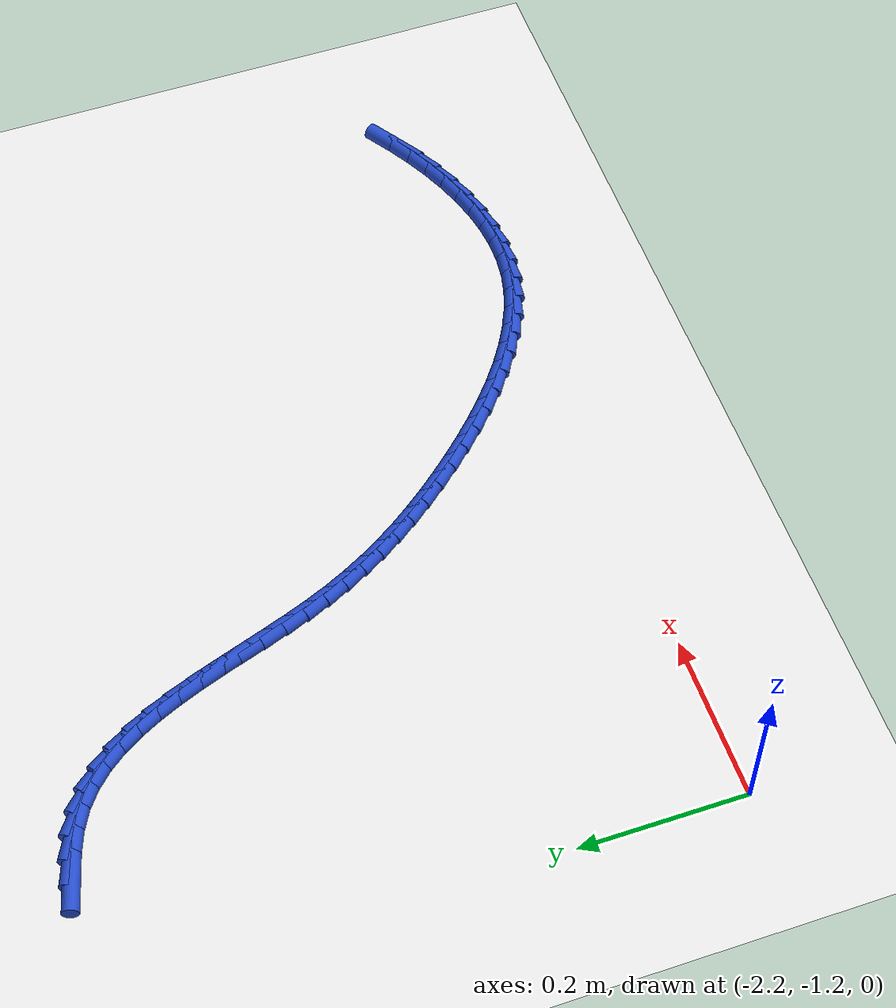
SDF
<sdf version="1.6">
 <world name="default">
  <model name="ground_plane">
   <static>1</static>
   <link name="link">
    <collision name="collision">
     <geometry><plane><normal>0 0 1</normal><size>100 100</size></plane></geometry>
     <surface><friction><ode><mu>100</mu><mu2>50</mu2></ode></friction></surface>
    </collision>
    <visual name="visual">
     <cast_shadows>0</cast_shadows>
     <geometry><plane><normal>0 0 1</normal><size>100 100</size></plane></geometry>
     <material>
      <script><uri>file://media/materials/scripts/gazebo.material</uri><name>Gazebo/WhiteGlow</name></script>
     </material>
    </visual>
   </link>
  </model>
  <model name="line">
   <link name="link_155">
    <pose>-2.062735660534346 -0.4829115184791522 0.01 0 1.57 -0.28682949683441206</pose>
    <collision name="collision">
     <geometry><cylinder><radius>0.01</radius><length>0.08</length></cylinder></geometry>
    </collision>
    <visual name="visual">
     <material>
      <script><name>Gazebo/Blue</name><uri>file://media/materials/scripts/gazebo.material</uri></script>
     </material>
     <geometry><cylinder><radius>0.01</radius><length>0.08</length></cylinder></geometry>
    </visual>
   </link>
   <link name="link_156">
    <pose>-2.0349934640824365 -0.49109444556538323 0.01 0 1.57 -0.37485598040513674</pose>
    <collision name="collision">
     <geometry><cylinder><radius>0.01</radius><length>0.08</length></cylinder></geometry>
    </collision>
    <visual name="visual">
     <material>
      <script><name>Gazebo/Blue</name><uri>file://media/materials/scripts/gazebo.material</uri></script>
     </material>
     <geometry><cylinder><radius>0.01</radius><length>0.08</length></cylinder></geometry>
    </visual>
   </link>
   <link name="link_157">
    <pose>-2.0089760882271146 -0.5013312488021626 0.01 0 1.57 -0.5024992568520704</pose>
    <collision name="collision">
     <geometry><cylinder><radius>0.01</radius><length>0.08</length></cylinder></geometry>
    </collision>
    <visual name="visual">
     <material>
      <script><name>Gazebo/Blue</name><uri>file://media/materials/scripts/gazebo.material</uri></script>
     </material>
     <geometry><cylinder><radius>0.01</radius><length>0.08</length></cylinder></geometry>
    </visual>
   </link>
   <link name="link_158">
    <pose>-1.9852979208535406 -0.5143436350402294 0.01 0 1.57 -0.655659338590333</pose>
    <collision name="collision">
     <geometry><cylinder><radius>0.01</radius><length>0.08</length></cylinder></geometry>
    </collision>
    <visual name="visual">
     <material>
      <script><name>Gazebo/Blue</name><uri>file://media/materials/scripts/gazebo.material</uri></script>
     </material>
     <geometry><cylinder><radius>0.01</radius><length>0.08</length></cylinder></geometry>
    </visual>
   </link>
   <link name="link_159">
    <pose>-1.9642812218247252 -0.5305091127178927 0.01 0 1.57 -0.7974680891804768</pose>
    <collision name="collision">
     <geometry><cylinder><radius>0.01</radius><length>0.08</length></cylinder></geometry>
    </collision>
    <visual name="visual">
     <material>
      <script><name>Gazebo/Blue</name><uri>file://media/materials/scripts/gazebo.material</uri></script>
     </material>
     <geometry><cylinder><radius>0.01</radius><length>0.08</length></cylinder></geometry>
    </visual>
   </link>
   <link name="link_160">
    <pose>-1.9456932666925997 -0.5495512827250142 0.01 0 1.57 -0.9191263827128971</pose>
    <collision name="collision">
     <geometry><cylinder><radius>0.01</radius><length>0.08</length></cylinder></geometry>
    </collision>
    <visual name="visual">
     <material>
      <script><name>Gazebo/Blue</name><uri>file://media/materials/scripts/gazebo.material</uri></script>
     </material>
     <geometry><cylinder><radius>0.01</radius><length>0.08</length></cylinder></geometry>
    </visual>
   </link>
   <link name="link_161">
    <pose>-1.9292392602196786 -0.5711206113475957 0.01 0 1.57 -1.0191003191852566</pose>
    <collision name="collision">
     <geometry><cylinder><radius>0.01</radius><length>0.08</length></cylinder></geometry>
    </collision>
    <visual name="visual">
     <material>
      <script><name>Gazebo/Blue</name><uri>file://media/materials/scripts/gazebo.material</uri></script>
     </material>
     <geometry><cylinder><radius>0.01</radius><length>0.08</length></cylinder></geometry>
    </visual>
   </link>
   <link name="link_162">
    <pose>-1.9146244071684757 -0.5948675648716398 0.01 0 1.57 -1.0983364284190318</pose>
    <collision name="collision">
     <geometry><cylinder><radius>0.01</radius><length>0.08</length></cylinder></geometry>
    </collision>
    <visual name="visual">
     <material>
      <script><name>Gazebo/Blue</name><uri>file://media/materials/scripts/gazebo.material</uri></script>
     </material>
     <geometry><cylinder><radius>0.01</radius><length>0.08</length></cylinder></geometry>
    </visual>
   </link>
   <link name="link_163">
    <pose>-1.9015539123015044 -0.6204426095831486 0.01 0 1.57 -1.1588519492311138</pose>
    <collision name="collision">
     <geometry><cylinder><radius>0.01</radius><length>0.08</length></cylinder></geometry>
    </collision>
    <visual name="visual">
     <material>
      <script><name>Gazebo/Blue</name><uri>file://media/materials/scripts/gazebo.material</uri></script>
     </material>
     <geometry><cylinder><radius>0.01</radius><length>0.08</length></cylinder></geometry>
    </visual>
   </link>
   <link name="link_164">
    <pose>-1.8897329803812781 -0.6474962117681239 0.01 0 1.57 -1.2027976751684275</pose>
    <collision name="collision">
     <geometry><cylinder><radius>0.01</radius><length>0.08</length></cylinder></geometry>
    </collision>
    <visual name="visual">
     <material>
      <script><name>Gazebo/Blue</name><uri>file://media/materials/scripts/gazebo.material</uri></script>
     </material>
     <geometry><cylinder><radius>0.01</radius><length>0.08</length></cylinder></geometry>
    </visual>
   </link>
   <link name="link_165">
    <pose>-1.8788668161703113 -0.675678837712569 0.01 0 1.57 -1.2319868042392554</pose>
    <collision name="collision">
     <geometry><cylinder><radius>0.01</radius><length>0.08</length></cylinder></geometry>
    </collision>
    <visual name="visual">
     <material>
      <script><name>Gazebo/Blue</name><uri>file://media/materials/scripts/gazebo.material</uri></script>
     </material>
     <geometry><cylinder><radius>0.01</radius><length>0.08</length></cylinder></geometry>
    </visual>
   </link>
   <link name="link_166">
    <pose>-1.8686606244311166 -0.7046409537024843 0.01 0 1.57 -1.2477095673919925</pose>
    <collision name="collision">
     <geometry><cylinder><radius>0.01</radius><length>0.08</length></cylinder></geometry>
    </collision>
    <visual name="visual">
     <material>
      <script><name>Gazebo/Blue</name><uri>file://media/materials/scripts/gazebo.material</uri></script>
     </material>
     <geometry><cylinder><radius>0.01</radius><length>0.08</length></cylinder></geometry>
    </visual>
   </link>
   <link name="link_167">
    <pose>-1.8588196099262084 -0.7340330260238725 0.01 0 1.57 -1.2506813804097197</pose>
    <collision name="collision">
     <geometry><cylinder><radius>0.01</radius><length>0.08</length></cylinder></geometry>
    </collision>
    <visual name="visual">
     <material>
      <script><name>Gazebo/Blue</name><uri>file://media/materials/scripts/gazebo.material</uri></script>
     </material>
     <geometry><cylinder><radius>0.01</radius><length>0.08</length></cylinder></geometry>
    </visual>
   </link>
   <link name="link_168">
    <pose>-1.8490489774180998 -0.7635055209627362 0.01 0 1.57 -1.241036601676549</pose>
    <collision name="collision">
     <geometry><cylinder><radius>0.01</radius><length>0.08</length></cylinder></geometry>
    </collision>
    <visual name="visual">
     <material>
      <script><name>Gazebo/Blue</name><uri>file://media/materials/scripts/gazebo.material</uri></script>
     </material>
     <geometry><cylinder><radius>0.01</radius><length>0.08</length></cylinder></geometry>
    </visual>
   </link>
   <link name="link_169">
    <pose>-1.839053931669305 -0.7927089048050773 0.01 0 1.57 -1.2183286205759907</pose>
    <collision name="collision">
     <geometry><cylinder><radius>0.01</radius><length>0.08</length></cylinder></geometry>
    </collision>
    <visual name="visual">
     <material>
      <script><name>Gazebo/Blue</name><uri>file://media/materials/scripts/gazebo.material</uri></script>
     </material>
     <geometry><cylinder><radius>0.01</radius><length>0.08</length></cylinder></geometry>
    </visual>
   </link>
   <link name="link_170">
    <pose>-1.828539677442338 -0.8212936438368978 0.01 0 1.57 -1.1816062189990113</pose>
    <collision name="collision">
     <geometry><cylinder><radius>0.01</radius><length>0.08</length></cylinder></geometry>
    </collision>
    <visual name="visual">
     <material>
      <script><name>Gazebo/Blue</name><uri>file://media/materials/scripts/gazebo.material</uri></script>
     </material>
     <geometry><cylinder><radius>0.01</radius><length>0.08</length></cylinder></geometry>
    </visual>
   </link>
   <link name="link_171">
    <pose>-1.817212890933854 -0.8489126439047393 0.01 0 1.57 -1.1351243763566226</pose>
    <collision name="collision">
     <geometry><cylinder><radius>0.01</radius><length>0.08</length></cylinder></geometry>
    </collision>
    <visual name="visual">
     <material>
      <script><name>Gazebo/Blue</name><uri>file://media/materials/scripts/gazebo.material</uri></script>
     </material>
     <geometry><cylinder><radius>0.01</radius><length>0.08</length></cylinder></geometry>
    </visual>
   </link>
   <link name="link_172">
    <pose>-1.80488580196614 -0.8753938132234336 0.01 0 1.57 -1.088148190995271</pose>
    <collision name="collision">
     <geometry><cylinder><radius>0.01</radius><length>0.08</length></cylinder></geometry>
    </collision>
    <visual name="visual">
     <material>
      <script><name>Gazebo/Blue</name><uri>file://media/materials/scripts/gazebo.material</uri></script>
     </material>
     <geometry><cylinder><radius>0.01</radius><length>0.08</length></cylinder></geometry>
    </visual>
   </link>
   <link name="link_173">
    <pose>-1.7915450350064113 -0.9008541971710152 0.01 0 1.57 -1.0423888884661028</pose>
    <collision name="collision">
     <geometry><cylinder><radius>0.01</radius><length>0.08</length></cylinder></geometry>
    </collision>
    <visual name="visual">
     <material>
      <script><name>Gazebo/Blue</name><uri>file://media/materials/scripts/gazebo.material</uri></script>
     </material>
     <geometry><cylinder><radius>0.01</radius><length>0.08</length></cylinder></geometry>
    </visual>
   </link>
   <link name="link_174">
    <pose>-1.7771935518188826 -0.9254379275060128 0.01 0 1.57 -0.9986784791387313</pose>
    <collision name="collision">
     <geometry><cylinder><radius>0.01</radius><length>0.08</length></cylinder></geometry>
    </collision>
    <visual name="visual">
     <material>
      <script><name>Gazebo/Blue</name><uri>file://media/materials/scripts/gazebo.material</uri></script>
     </material>
     <geometry><cylinder><radius>0.01</radius><length>0.08</length></cylinder></geometry>
    </visual>
   </link>
   <link name="link_175">
    <pose>-1.7618343141677673 -0.9492891359869536 0.01 0 1.57 -0.9577644067114174</pose>
    <collision name="collision">
     <geometry><cylinder><radius>0.01</radius><length>0.08</length></cylinder></geometry>
    </collision>
    <visual name="visual">
     <material>
      <script><name>Gazebo/Blue</name><uri>file://media/materials/scripts/gazebo.material</uri></script>
     </material>
     <geometry><cylinder><radius>0.01</radius><length>0.08</length></cylinder></geometry>
    </visual>
   </link>
   <link name="link_176">
    <pose>-1.7454702838172804 -0.9725519543723659 0.01 0 1.57 -0.9202663027490074</pose>
    <collision name="collision">
     <geometry><cylinder><radius>0.01</radius><length>0.08</length></cylinder></geometry>
    </collision>
    <visual name="visual">
     <material>
      <script><name>Gazebo/Blue</name><uri>file://media/materials/scripts/gazebo.material</uri></script>
     </material>
     <geometry><cylinder><radius>0.01</radius><length>0.08</length></cylinder></geometry>
    </visual>
   </link>
   <link name="link_177">
    <pose>-1.7281044225316358 -0.9953705144207768 0.01 0 1.57 -0.8866500819120458</pose>
    <collision name="collision">
     <geometry><cylinder><radius>0.01</radius><length>0.08</length></cylinder></geometry>
    </collision>
    <visual name="visual">
     <material>
      <script><name>Gazebo/Blue</name><uri>file://media/materials/scripts/gazebo.material</uri></script>
     </material>
     <geometry><cylinder><radius>0.01</radius><length>0.08</length></cylinder></geometry>
    </visual>
   </link>
   <link name="link_178">
    <pose>-1.7097396920750472 -1.0178889478907143 0.01 0 1.57 -0.8570327930812043</pose>
    <collision name="collision">
     <geometry><cylinder><radius>0.01</radius><length>0.08</length></cylinder></geometry>
    </collision>
    <visual name="visual">
     <material>
      <script><name>Gazebo/Blue</name><uri>file://media/materials/scripts/gazebo.material</uri></script>
     </material>
     <geometry><cylinder><radius>0.01</radius><length>0.08</length></cylinder></geometry>
    </visual>
   </link>
   <link name="link_179">
    <pose>-1.6903800971364604 -1.0402417139546458 0.01 0 1.57 -0.8273139871818311</pose>
    <collision name="collision">
     <geometry><cylinder><radius>0.01</radius><length>0.08</length></cylinder></geometry>
    </collision>
    <visual name="visual">
     <material>
      <script><name>Gazebo/Blue</name><uri>file://media/materials/scripts/gazebo.material</uri></script>
     </material>
     <geometry><cylinder><radius>0.01</radius><length>0.08</length></cylinder></geometry>
    </visual>
   </link>
   <link name="link_180">
    <pose>-1.670052772484395 -1.062348752291439 0.01 0 1.57 -0.7930072824260064</pose>
    <collision name="collision">
     <geometry><cylinder><radius>0.01</radius><length>0.08</length></cylinder></geometry>
    </collision>
    <visual name="visual">
     <material>
      <script><name>Gazebo/Blue</name><uri>file://media/materials/scripts/gazebo.material</uri></script>
     </material>
     <geometry><cylinder><radius>0.01</radius><length>0.08</length></cylinder></geometry>
    </visual>
   </link>
   <link name="link_181">
    <pose>-1.6488075165414315 -1.0839198089411197 0.01 0 1.57 -0.7532860976801429</pose>
    <collision name="collision">
     <geometry><cylinder><radius>0.01</radius><length>0.08</length></cylinder></geometry>
    </collision>
    <visual name="visual">
     <material>
      <script><name>Gazebo/Blue</name><uri>file://media/materials/scripts/gazebo.material</uri></script>
     </material>
     <geometry><cylinder><radius>0.01</radius><length>0.08</length></cylinder></geometry>
    </visual>
   </link>
   <link name="link_182">
    <pose>-1.6266950773576456 -1.104655822641158 0.01 0 1.57 -0.7073322697476542</pose>
    <collision name="collision">
     <geometry><cylinder><radius>0.01</radius><length>0.08</length></cylinder></geometry>
    </collision>
    <visual name="visual">
     <material>
      <script><name>Gazebo/Blue</name><uri>file://media/materials/scripts/gazebo.material</uri></script>
     </material>
     <geometry><cylinder><radius>0.01</radius><length>0.08</length></cylinder></geometry>
    </visual>
   </link>
   <link name="link_183">
    <pose>-1.6037662029831108 -1.1242577321290266 0.01 0 1.57 -0.6541601623114606</pose>
    <collision name="collision">
     <geometry><cylinder><radius>0.01</radius><length>0.08</length></cylinder></geometry>
    </collision>
    <visual name="visual">
     <material>
      <script><name>Gazebo/Blue</name><uri>file://media/materials/scripts/gazebo.material</uri></script>
     </material>
     <geometry><cylinder><radius>0.01</radius><length>0.08</length></cylinder></geometry>
    </visual>
   </link>
   <link name="link_184">
    <pose>-1.5800716414679006 -1.1424264761421958 0.01 0 1.57 -0.5926259778898804</pose>
    <collision name="collision">
     <geometry><cylinder><radius>0.01</radius><length>0.08</length></cylinder></geometry>
    </collision>
    <visual name="visual">
     <material>
      <script><name>Gazebo/Blue</name><uri>file://media/materials/scripts/gazebo.material</uri></script>
     </material>
     <geometry><cylinder><radius>0.01</radius><length>0.08</length></cylinder></geometry>
    </visual>
   </link>
   <link name="link_185">
    <pose>-1.5556621408620899 -1.1588629934181378 0.01 0 1.57 -0.5214702323974248</pose>
    <collision name="collision">
     <geometry><cylinder><radius>0.01</radius><length>0.08</length></cylinder></geometry>
    </collision>
    <visual name="visual">
     <material>
      <script><name>Gazebo/Blue</name><uri>file://media/materials/scripts/gazebo.material</uri></script>
     </material>
     <geometry><cylinder><radius>0.01</radius><length>0.08</length></cylinder></geometry>
    </visual>
   </link>
   <link name="link_186">
    <pose>-1.5305884492157524 -1.1732682226943245 0.01 0 1.57 -0.4394223219648834</pose>
    <collision name="collision">
     <geometry><cylinder><radius>0.01</radius><length>0.08</length></cylinder></geometry>
    </collision>
    <visual name="visual">
     <material>
      <script><name>Gazebo/Blue</name><uri>file://media/materials/scripts/gazebo.material</uri></script>
     </material>
     <geometry><cylinder><radius>0.01</radius><length>0.08</length></cylinder></geometry>
    </visual>
   </link>
   <link name="link_187">
    <pose>-1.504901314578963 -1.1853431027082268 0.01 0 1.57 -0.34540485111380037</pose>
    <collision name="collision">
     <geometry><cylinder><radius>0.01</radius><length>0.08</length></cylinder></geometry>
    </collision>
    <visual name="visual">
     <material>
      <script><name>Gazebo/Blue</name><uri>file://media/materials/scripts/gazebo.material</uri></script>
     </material>
     <geometry><cylinder><radius>0.01</radius><length>0.08</length></cylinder></geometry>
    </visual>
   </link>
   <link name="link_188">
    <pose>-1.478651485001794 -1.1947885721973164 0.01 0 1.57 -0.23886954054652107</pose>
    <collision name="collision">
     <geometry><cylinder><radius>0.01</radius><length>0.08</length></cylinder></geometry>
    </collision>
    <visual name="visual">
     <material>
      <script><name>Gazebo/Blue</name><uri>file://media/materials/scripts/gazebo.material</uri></script>
     </material>
     <geometry><cylinder><radius>0.01</radius><length>0.08</length></cylinder></geometry>
    </visual>
   </link>
   <link name="link_189">
    <pose>-1.4518897085343219 -1.2013055698990645 0.01 0 1.57 -0.12132492277094577</pose>
    <collision name="collision">
     <geometry><cylinder><radius>0.01</radius><length>0.08</length></cylinder></geometry>
    </collision>
    <visual name="visual">
     <material>
      <script><name>Gazebo/Blue</name><uri>file://media/materials/scripts/gazebo.material</uri></script>
     </material>
     <geometry><cylinder><radius>0.01</radius><length>0.08</length></cylinder></geometry>
    </visual>
   </link>
   <link name="link_190">
    <pose>-1.424671140732195 -1.2046241594584295 0.01 0 1.57 -0.005789954212050605</pose>
    <collision name="collision">
     <geometry><cylinder><radius>0.01</radius><length>0.08</length></cylinder></geometry>
    </collision>
    <visual name="visual">
     <material>
      <script><name>Gazebo/Blue</name><uri>file://media/materials/scripts/gazebo.material</uri></script>
     </material>
     <geometry><cylinder><radius>0.01</radius><length>0.08</length></cylinder></geometry>
    </visual>
   </link>
   <link name="link_191">
    <pose>-1.3970977598144436 -1.2047838098554358 0.01 0 1.57 0.09943490104949669</pose>
    <collision name="collision">
     <geometry><cylinder><radius>0.01</radius><length>0.08</length></cylinder></geometry>
    </collision>
    <visual name="visual">
     <material>
      <script><name>Gazebo/Blue</name><uri>file://media/materials/scripts/gazebo.material</uri></script>
     </material>
     <geometry><cylinder><radius>0.01</radius><length>0.08</length></cylinder></geometry>
    </visual>
   </link>
   <link name="link_192">
    <pose>-1.369299780038482 -1.202010574520583 0.01 0 1.57 0.19391473427256842</pose>
    <collision name="collision">
     <geometry><cylinder><radius>0.01</radius><length>0.08</length></cylinder></geometry>
    </collision>
    <visual name="visual">
     <material>
      <script><name>Gazebo/Blue</name><uri>file://media/materials/scripts/gazebo.material</uri></script>
     </material>
     <geometry><cylinder><radius>0.01</radius><length>0.08</length></cylinder></geometry>
    </visual>
   </link>
   <link name="link_193">
    <pose>-1.3414078050966143 -1.196533080279909 0.01 0 1.57 0.27811544977711383</pose>
    <collision name="collision">
     <geometry><cylinder><radius>0.01</radius><length>0.08</length></cylinder></geometry>
    </collision>
    <visual name="visual">
     <material>
      <script><name>Gazebo/Blue</name><uri>file://media/materials/scripts/gazebo.material</uri></script>
     </material>
     <geometry><cylinder><radius>0.01</radius><length>0.08</length></cylinder></geometry>
    </visual>
   </link>
   <link name="link_194">
    <pose>-1.3135524386811464 -1.1885799539594553 0.01 0 1.57 0.35296598605799695</pose>
    <collision name="collision">
     <geometry><cylinder><radius>0.01</radius><length>0.08</length></cylinder></geometry>
    </collision>
    <visual name="visual">
     <material>
      <script><name>Gazebo/Blue</name><uri>file://media/materials/scripts/gazebo.material</uri></script>
     </material>
     <geometry><cylinder><radius>0.01</radius><length>0.08</length></cylinder></geometry>
    </visual>
   </link>
   <link name="link_195">
    <pose>-1.2858642844843837 -1.1783798223852608 0.01 0 1.57 0.4195962129180079</pose>
    <collision name="collision">
     <geometry><cylinder><radius>0.01</radius><length>0.08</length></cylinder></geometry>
    </collision>
    <visual name="visual">
     <material>
      <script><name>Gazebo/Blue</name><uri>file://media/materials/scripts/gazebo.material</uri></script>
     </material>
     <geometry><cylinder><radius>0.01</radius><length>0.08</length></cylinder></geometry>
    </visual>
   </link>
   <link name="link_196">
    <pose>-1.2584739461986305 -1.1661613123833647 0.01 0 1.57 0.4791707538862619</pose>
    <collision name="collision">
     <geometry><cylinder><radius>0.01</radius><length>0.08</length></cylinder></geometry>
    </collision>
    <visual name="visual">
     <material>
      <script><name>Gazebo/Blue</name><uri>file://media/materials/scripts/gazebo.material</uri></script>
     </material>
     <geometry><cylinder><radius>0.01</radius><length>0.08</length></cylinder></geometry>
    </visual>
   </link>
   <link name="link_197">
    <pose>-1.2315120275161924 -1.1521530507798066 0.01 0 1.57 0.5328002756258291</pose>
    <collision name="collision">
     <geometry><cylinder><radius>0.01</radius><length>0.08</length></cylinder></geometry>
    </collision>
    <visual name="visual">
     <material>
      <script><name>Gazebo/Blue</name><uri>file://media/materials/scripts/gazebo.material</uri></script>
     </material>
     <geometry><cylinder><radius>0.01</radius><length>0.08</length></cylinder></geometry>
    </visual>
   </link>
   <link name="link_198">
    <pose>-1.205109132129375 -1.1365836644006266 0.01 0 1.57 0.5815049431488145</pose>
    <collision name="collision">
     <geometry><cylinder><radius>0.01</radius><length>0.08</length></cylinder></geometry>
    </collision>
    <visual name="visual">
     <material>
      <script><name>Gazebo/Blue</name><uri>file://media/materials/scripts/gazebo.material</uri></script>
     </material>
     <geometry><cylinder><radius>0.01</radius><length>0.08</length></cylinder></geometry>
    </visual>
   </link>
  </model>
 </world>
</sdf>
